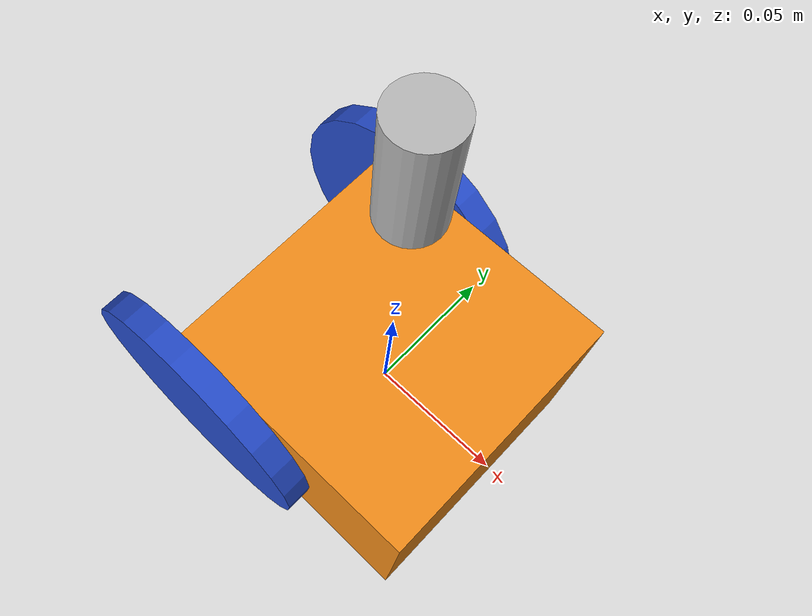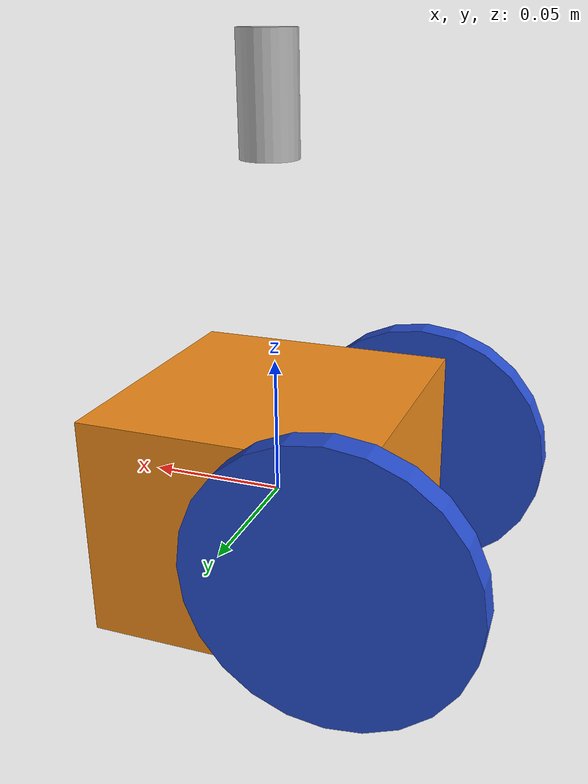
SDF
<?xml version="1.0"?>
<sdf version='1.6'>
  <model name='dd_bot'>
    <link name='base_link'>
      <pose frame=''>0 0 0 0 -0 0</pose>
      <inertial>
        <pose frame=''>0 0 0 0 -0 0</pose>
        <mass>1.3</mass>
        <inertia>
          <ixx>0.13</ixx>
          <ixy>0</ixy>
          <ixz>0</ixz>
          <iyy>0.21</iyy>
          <iyz>0</iyz>
          <izz>0.13</izz>
        </inertia>
      </inertial>
      <collision name='base_link_collision'>
        <pose frame=''>0 0 0 0 -0 0</pose>
        <geometry>
          <box>
            <size>0.1 0.1 0.08</size>
          </box>
        </geometry>
        <surface>
          <contact>
            <ode/>
          </contact>
          <friction>
            <ode>
              <mu>0</mu>
              <mu2>0</mu2>
            </ode>
          </friction>
        </surface>
      </collision>
      <collision name='base_link_collision_1'>
        <pose frame=''>0.04 0 -0.04 0 -0 0</pose>
        <geometry>
          <sphere>
            <radius>0.01</radius>
          </sphere>
        </geometry>
        <surface>
          <contact>
            <ode/>
          </contact>
          <friction>
            <ode>
              <mu>0</mu>
              <mu2>0</mu2>
            </ode>
          </friction>
        </surface>
      </collision>
      <visual name='base_link_visual'>
        <pose frame=''>0 0 0 0 -0 0</pose>
        <geometry>
          <box>
            <size>0.1 0.1 0.08</size>
          </box>
        </geometry>
        <material>
          <script>
            <name>Gazebo/Orange</name>
            <uri>file://media/materials/scripts/gazebo.material</uri>
          </script>
        </material>
      </visual>
      <visual name='base_link_fixed_joint_lump__caster_visual_1'>
        <pose frame=''>0.04 0 -0.04 0 -0 0</pose>
        <geometry>
          <sphere>
            <radius>0.01</radius>
          </sphere>
        </geometry>
      </visual>
      <visual name='base_link_fixed_joint_lump__laser_visual_2'>
        <pose frame=''>0 0 0.14 0 -0 0</pose>
        <geometry>
          <cylinder>
            <length>0.04</length>
            <radius>0.01</radius>
          </cylinder>
        </geometry>
        <material>
          <script>
            <uri>__default__</uri>
            <name>__default__</name>
          </script>
        </material>
      </visual>
      <velocity_decay/>
      <gravity>1</gravity>
      <velocity_decay/>
      <sensor name='laser sensor' type='ray'>
        <visualize>0</visualize>
        <update_rate>40</update_rate>
        <ray>
          <scan>
            <horizontal>
              <samples>720</samples>
              <resolution>1</resolution>
              <min_angle>-3.13</min_angle>
              <max_angle>3.14</max_angle>
            </horizontal>
          </scan>
          <range>
            <min>0.05</min>
            <max>1</max>
            <resolution>0.01</resolution>
          </range>
          <noise>
            <type>gaussian</type>
            <mean>0</mean>
            <stddev>0.01</stddev>
          </noise>
        </ray>
        <plugin name='gazebo_ros_laser_scan' filename='libgazebo_ros_laser.so'>
          <topicName>/dd_bot/laser/scan</topicName>
          <frameName>laser</frameName>
        </plugin>
        <pose frame=''>0.04 0 0.06 0 -0 0</pose>
      </sensor>
    </link>
    <link name='left_wheel'>
      <pose frame=''>-0.04 0.055 0 0 -0 0</pose>
      <inertial>
        <pose frame=''>0 0 0 0 -0 0</pose>
        <mass>0.05</mass>
        <inertia>
          <ixx>0.01</ixx>
          <ixy>0</ixy>
          <ixz>0</ixz>
          <iyy>0.005</iyy>
          <iyz>0</iyz>
          <izz>0.005</izz>
        </inertia>
      </inertial>
      <collision name='left_wheel_collision'>
        <pose frame=''>0 0 0 1.57079 -0 0</pose>
        <geometry>
          <cylinder>
            <length>0.01</length>
            <radius>0.05</radius>
          </cylinder>
        </geometry>
        <surface>
          <contact>
            <ode/>
          </contact>
          <friction>
            <ode>
              <mu>1</mu>
              <mu2>1</mu2>
            </ode>
          </friction>
        </surface>
      </collision>
      <visual name='left_wheel_visual'>
        <pose frame=''>0 0 0 1.57079 -0 0</pose>
        <geometry>
          <cylinder>
            <length>0.01</length>
            <radius>0.05</radius>
          </cylinder>
        </geometry>
        <material>
          <script>
            <name>Gazebo/Blue</name>
            <uri>file://media/materials/scripts/gazebo.material</uri>
          </script>
        </material>
      </visual>
      <gravity>1</gravity>
      <velocity_decay/>
    </link>
    <joint name='left_wheel_joint' type='revolute'>
      <child>left_wheel</child>
      <parent>base_link</parent>
      <axis>
        <xyz>0 1 0</xyz>
        <limit>
          <lower>-1e+16</lower>
          <upper>1e+16</upper>
        </limit>
        <dynamics>
          <spring_reference>0</spring_reference>
          <spring_stiffness>0</spring_stiffness>
        </dynamics>
        <use_parent_model_frame>0</use_parent_model_frame>
      </axis>
    </joint>
    <link name='right_wheel'>
      <pose frame=''>-0.04 -0.055 0 0 -0 0</pose>
      <inertial>
        <pose frame=''>0 0 0 0 -0 0</pose>
        <mass>0.05</mass>
        <inertia>
          <ixx>0.01</ixx>
          <ixy>0</ixy>
          <ixz>0</ixz>
          <iyy>0.005</iyy>
          <iyz>0</iyz>
          <izz>0.005</izz>
        </inertia>
      </inertial>
      <collision name='right_wheel_collision'>
        <pose frame=''>0 0 0 1.57079 -0 0</pose>
        <geometry>
          <cylinder>
            <length>0.01</length>
            <radius>0.05</radius>
          </cylinder>
        </geometry>
        <surface>
          <contact>
            <ode/>
          </contact>
          <friction>
            <ode>
              <mu>1</mu>
              <mu2>1</mu2>
            </ode>
          </friction>
        </surface>
      </collision>
      <visual name='right_wheel_visual'>
        <pose frame=''>0 0 0 1.57079 -0 0</pose>
        <geometry>
          <cylinder>
            <length>0.01</length>
            <radius>0.05</radius>
          </cylinder>
        </geometry>
        <material>
          <script>
            <name>Gazebo/Blue</name>
            <uri>file://media/materials/scripts/gazebo.material</uri>
          </script>
        </material>
      </visual>
      <gravity>1</gravity>
      <velocity_decay/>
    </link>
    <joint name='right_wheel_joint' type='revolute'>
      <child>right_wheel</child>
      <parent>base_link</parent>
      <axis>
        <xyz>0 1 0</xyz>
        <limit>
          <lower>-1e+16</lower>
          <upper>1e+16</upper>
        </limit>
        <dynamics>
          <spring_reference>0</spring_reference>
          <spring_stiffness>0</spring_stiffness>
        </dynamics>
        <use_parent_model_frame>0</use_parent_model_frame>
      </axis>
    </joint>
    <static>0</static>
    <plugin name='gazebo_ros_control' filename='libgazebo_ros_control.so'>
      <robotNamespace>/dd_bot</robotNamespace>
      <robotSimType>gazebo_ros_control/DefaultRobotHWSim</robotSimType>
    </plugin>

  </model>
</sdf>
